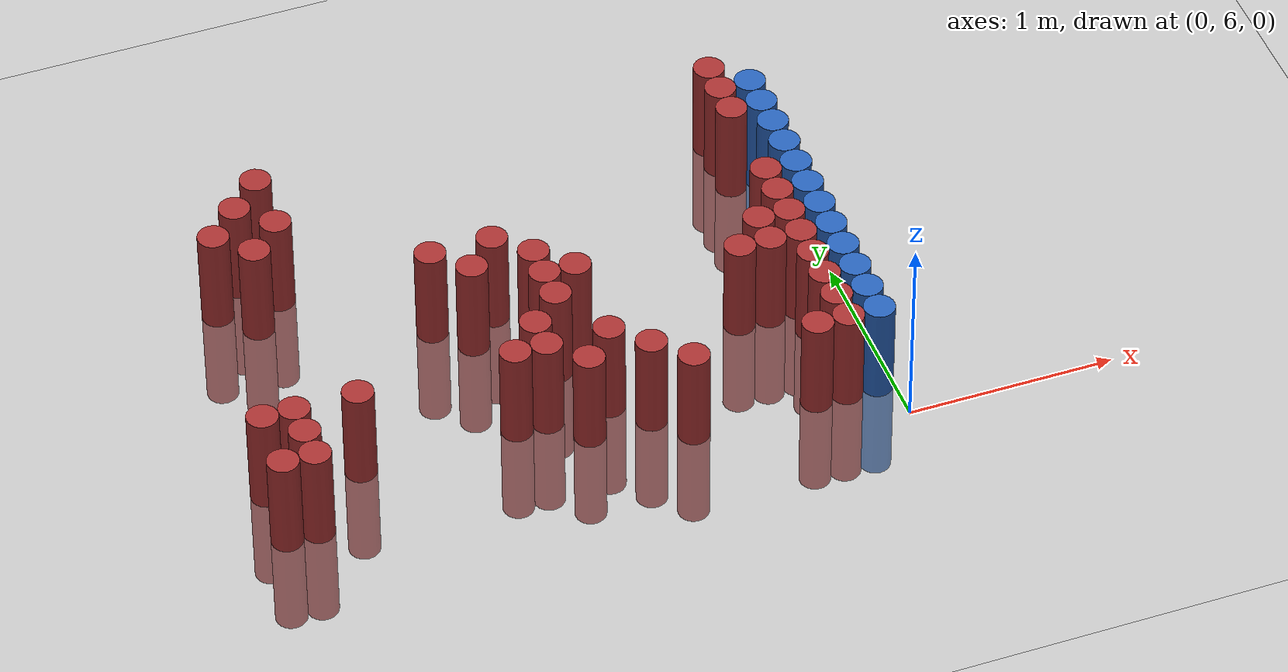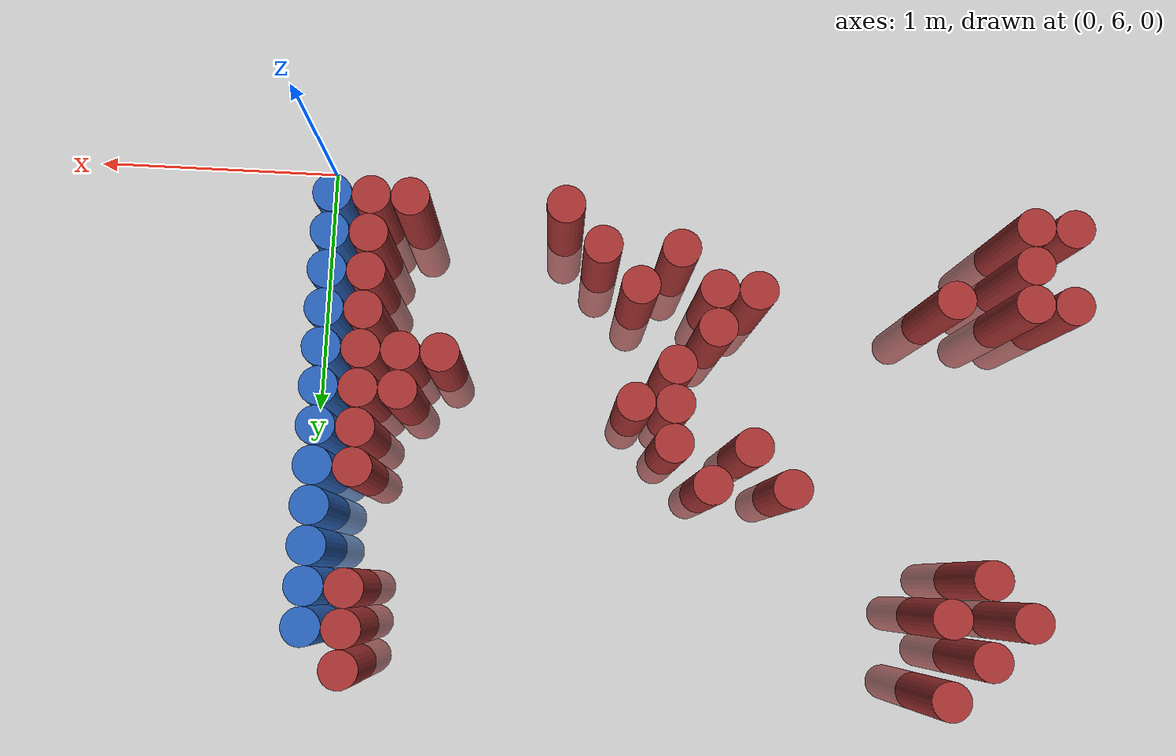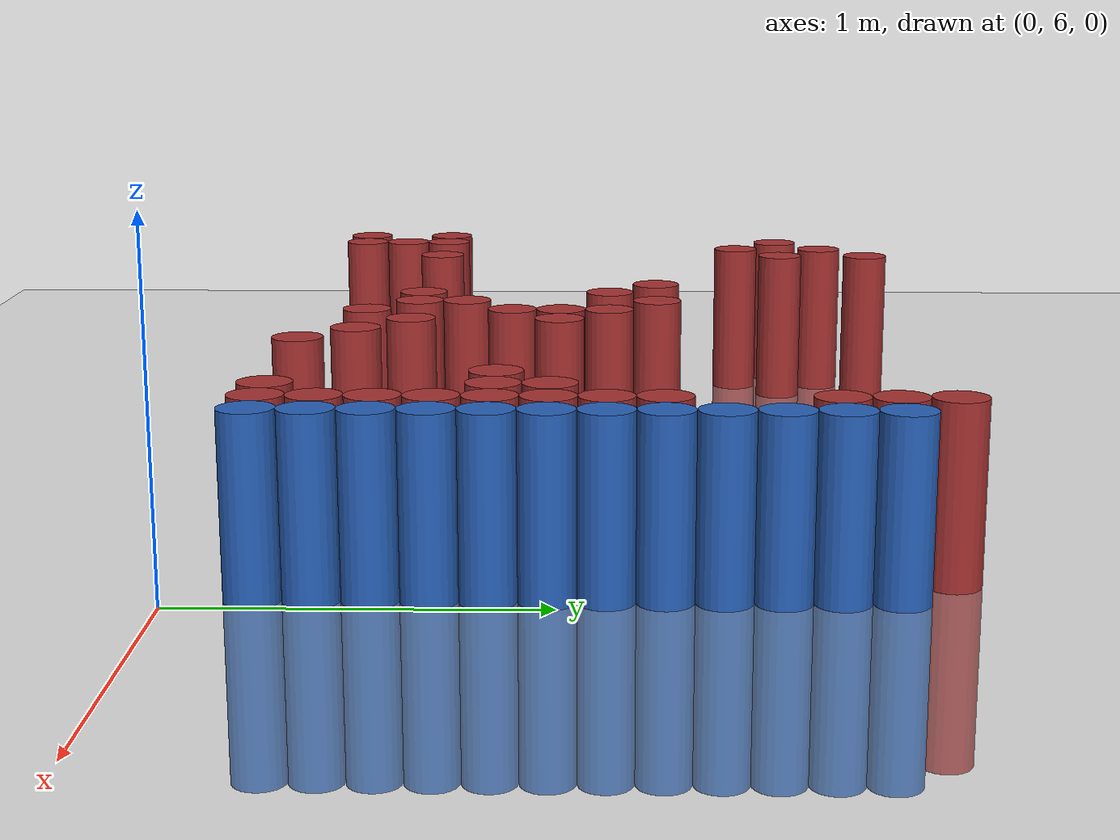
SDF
<sdf version="1.6">
 <world name="default">
  <model name="ground_plane">
   <static>1</static>
   <link name="link">
    <collision name="collision">
     <geometry><plane><normal>0 0 1</normal><size>100 100</size></plane></geometry>
     <surface><friction><ode><mu>100</mu><mu2>50</mu2></ode></friction></surface>
    </collision>
    <visual name="visual">
     <cast_shadows>0</cast_shadows>
     <geometry><plane><normal>0 0 1</normal><size>100 100</size></plane></geometry>
     <material>
      <script><uri>file://media/materials/scripts/gazebo.material</uri><name>Gazebo/Grey</name></script>
     </material>
    </visual>
   </link>
  </model>
  <model name="unit_cylinder_165">
   <static>1</static>
   <pose>-2.925000 6.225000 0.000000 0.000000 0.000000 0.000000</pose>
   <link name="link">
    <inertial>
     <mass>1</mass>
     <inertia><ixx>0.145833</ixx><ixy>0</ixy><ixz>0</ixz><iyy>0.145833</iyy><iyz>0</iyz><izz>0.125</izz></inertia>
    </inertial>
    <collision name="collision">
     <geometry><cylinder><radius>0.075000</radius><length>1</length></cylinder></geometry>
    </collision>
    <visual name="visual">
     <geometry><cylinder><radius>0.075000</radius><length>1</length></cylinder></geometry>
     <material>
      <ambient>0.648000 0.192000 0.192000 1</ambient>
      <diffuse>0.648000 0.192000 0.192000 1</diffuse>
     </material>
     <material>
      <script><name>Gazebo/Grey</name><uri>file://media/materials/scripts/gazebo.material</uri></script>
     </material>
    </visual>
   </link>
  </model>
  <model name="unit_cylinder_166">
   <static>1</static>
   <pose>-2.925000 6.525000 0.000000 0.000000 0.000000 0.000000</pose>
   <link name="link">
    <inertial>
     <mass>1</mass>
     <inertia><ixx>0.145833</ixx><ixy>0</ixy><ixz>0</ixz><iyy>0.145833</iyy><iyz>0</iyz><izz>0.125</izz></inertia>
    </inertial>
    <collision name="collision">
     <geometry><cylinder><radius>0.075000</radius><length>1</length></cylinder></geometry>
    </collision>
    <visual name="visual">
     <geometry><cylinder><radius>0.075000</radius><length>1</length></cylinder></geometry>
     <material>
      <ambient>0.648000 0.192000 0.192000 1</ambient>
      <diffuse>0.648000 0.192000 0.192000 1</diffuse>
     </material>
     <material>
      <script><name>Gazebo/Grey</name><uri>file://media/materials/scripts/gazebo.material</uri></script>
     </material>
    </visual>
   </link>
  </model>
  <model name="unit_cylinder_176">
   <static>1</static>
   <pose>-2.775000 6.225000 0.000000 0.000000 0.000000 0.000000</pose>
   <link name="link">
    <inertial>
     <mass>1</mass>
     <inertia><ixx>0.145833</ixx><ixy>0</ixy><ixz>0</ixz><iyy>0.145833</iyy><iyz>0</iyz><izz>0.125</izz></inertia>
    </inertial>
    <collision name="collision">
     <geometry><cylinder><radius>0.075000</radius><length>1</length></cylinder></geometry>
    </collision>
    <visual name="visual">
     <geometry><cylinder><radius>0.075000</radius><length>1</length></cylinder></geometry>
     <material>
      <ambient>0.648000 0.192000 0.192000 1</ambient>
      <diffuse>0.648000 0.192000 0.192000 1</diffuse>
     </material>
     <material>
      <script><name>Gazebo/Grey</name><uri>file://media/materials/scripts/gazebo.material</uri></script>
     </material>
    </visual>
   </link>
  </model>
  <model name="unit_cylinder_177">
   <static>1</static>
   <pose>-2.775000 6.375000 0.000000 0.000000 0.000000 0.000000</pose>
   <link name="link">
    <inertial>
     <mass>1</mass>
     <inertia><ixx>0.145833</ixx><ixy>0</ixy><ixz>0</ixz><iyy>0.145833</iyy><iyz>0</iyz><izz>0.125</izz></inertia>
    </inertial>
    <collision name="collision">
     <geometry><cylinder><radius>0.075000</radius><length>1</length></cylinder></geometry>
    </collision>
    <visual name="visual">
     <geometry><cylinder><radius>0.075000</radius><length>1</length></cylinder></geometry>
     <material>
      <ambient>0.648000 0.192000 0.192000 1</ambient>
      <diffuse>0.648000 0.192000 0.192000 1</diffuse>
     </material>
     <material>
      <script><name>Gazebo/Grey</name><uri>file://media/materials/scripts/gazebo.material</uri></script>
     </material>
    </visual>
   </link>
  </model>
  <model name="unit_cylinder_178">
   <static>1</static>
   <pose>-2.775000 6.525000 0.000000 0.000000 0.000000 0.000000</pose>
   <link name="link">
    <inertial>
     <mass>1</mass>
     <inertia><ixx>0.145833</ixx><ixy>0</ixy><ixz>0</ixz><iyy>0.145833</iyy><iyz>0</iyz><izz>0.125</izz></inertia>
    </inertial>
    <collision name="collision">
     <geometry><cylinder><radius>0.075000</radius><length>1</length></cylinder></geometry>
    </collision>
    <visual name="visual">
     <geometry><cylinder><radius>0.075000</radius><length>1</length></cylinder></geometry>
     <material>
      <ambient>0.648000 0.192000 0.192000 1</ambient>
      <diffuse>0.648000 0.192000 0.192000 1</diffuse>
     </material>
     <material>
      <script><name>Gazebo/Grey</name><uri>file://media/materials/scripts/gazebo.material</uri></script>
     </material>
    </visual>
   </link>
  </model>
  <model name="unit_cylinder_179">
   <static>1</static>
   <pose>-2.775000 7.725000 0.000000 0.000000 0.000000 0.000000</pose>
   <link name="link">
    <inertial>
     <mass>1</mass>
     <inertia><ixx>0.145833</ixx><ixy>0</ixy><ixz>0</ixz><iyy>0.145833</iyy><iyz>0</iyz><izz>0.125</izz></inertia>
    </inertial>
    <collision name="collision">
     <geometry><cylinder><radius>0.075000</radius><length>1</length></cylinder></geometry>
    </collision>
    <visual name="visual">
     <geometry><cylinder><radius>0.075000</radius><length>1</length></cylinder></geometry>
     <material>
      <ambient>0.648000 0.192000 0.192000 1</ambient>
      <diffuse>0.648000 0.192000 0.192000 1</diffuse>
     </material>
     <material>
      <script><name>Gazebo/Grey</name><uri>file://media/materials/scripts/gazebo.material</uri></script>
     </material>
    </visual>
   </link>
  </model>
  <model name="unit_cylinder_189">
   <static>1</static>
   <pose>-2.625000 7.575000 0.000000 0.000000 0.000000 0.000000</pose>
   <link name="link">
    <inertial>
     <mass>1</mass>
     <inertia><ixx>0.145833</ixx><ixy>0</ixy><ixz>0</ixz><iyy>0.145833</iyy><iyz>0</iyz><izz>0.125</izz></inertia>
    </inertial>
    <collision name="collision">
     <geometry><cylinder><radius>0.075000</radius><length>1</length></cylinder></geometry>
    </collision>
    <visual name="visual">
     <geometry><cylinder><radius>0.075000</radius><length>1</length></cylinder></geometry>
     <material>
      <ambient>0.648000 0.192000 0.192000 1</ambient>
      <diffuse>0.648000 0.192000 0.192000 1</diffuse>
     </material>
     <material>
      <script><name>Gazebo/Grey</name><uri>file://media/materials/scripts/gazebo.material</uri></script>
     </material>
    </visual>
   </link>
  </model>
  <model name="unit_cylinder_190">
   <static>1</static>
   <pose>-2.625000 7.875000 0.000000 0.000000 0.000000 0.000000</pose>
   <link name="link">
    <inertial>
     <mass>1</mass>
     <inertia><ixx>0.145833</ixx><ixy>0</ixy><ixz>0</ixz><iyy>0.145833</iyy><iyz>0</iyz><izz>0.125</izz></inertia>
    </inertial>
    <collision name="collision">
     <geometry><cylinder><radius>0.075000</radius><length>1</length></cylinder></geometry>
    </collision>
    <visual name="visual">
     <geometry><cylinder><radius>0.075000</radius><length>1</length></cylinder></geometry>
     <material>
      <ambient>0.648000 0.192000 0.192000 1</ambient>
      <diffuse>0.648000 0.192000 0.192000 1</diffuse>
     </material>
     <material>
      <script><name>Gazebo/Grey</name><uri>file://media/materials/scripts/gazebo.material</uri></script>
     </material>
    </visual>
   </link>
  </model>
  <model name="unit_cylinder_196">
   <static>1</static>
   <pose>-2.475000 6.525000 0.000000 0.000000 0.000000 0.000000</pose>
   <link name="link">
    <inertial>
     <mass>1</mass>
     <inertia><ixx>0.145833</ixx><ixy>0</ixy><ixz>0</ixz><iyy>0.145833</iyy><iyz>0</iyz><izz>0.125</izz></inertia>
    </inertial>
    <collision name="collision">
     <geometry><cylinder><radius>0.075000</radius><length>1</length></cylinder></geometry>
    </collision>
    <visual name="visual">
     <geometry><cylinder><radius>0.075000</radius><length>1</length></cylinder></geometry>
     <material>
      <ambient>0.648000 0.192000 0.192000 1</ambient>
      <diffuse>0.648000 0.192000 0.192000 1</diffuse>
     </material>
     <material>
      <script><name>Gazebo/Grey</name><uri>file://media/materials/scripts/gazebo.material</uri></script>
     </material>
    </visual>
   </link>
  </model>
  <model name="unit_cylinder_197">
   <static>1</static>
   <pose>-2.475000 7.725000 0.000000 0.000000 0.000000 0.000000</pose>
   <link name="link">
    <inertial>
     <mass>1</mass>
     <inertia><ixx>0.145833</ixx><ixy>0</ixy><ixz>0</ixz><iyy>0.145833</iyy><iyz>0</iyz><izz>0.125</izz></inertia>
    </inertial>
    <collision name="collision">
     <geometry><cylinder><radius>0.075000</radius><length>1</length></cylinder></geometry>
    </collision>
    <visual name="visual">
     <geometry><cylinder><radius>0.075000</radius><length>1</length></cylinder></geometry>
     <material>
      <ambient>0.648000 0.192000 0.192000 1</ambient>
      <diffuse>0.648000 0.192000 0.192000 1</diffuse>
     </material>
     <material>
      <script><name>Gazebo/Grey</name><uri>file://media/materials/scripts/gazebo.material</uri></script>
     </material>
    </visual>
   </link>
  </model>
  <model name="unit_cylinder_198">
   <static>1</static>
   <pose>-2.475000 8.025000 0.000000 0.000000 0.000000 0.000000</pose>
   <link name="link">
    <inertial>
     <mass>1</mass>
     <inertia><ixx>0.145833</ixx><ixy>0</ixy><ixz>0</ixz><iyy>0.145833</iyy><iyz>0</iyz><izz>0.125</izz></inertia>
    </inertial>
    <collision name="collision">
     <geometry><cylinder><radius>0.075000</radius><length>1</length></cylinder></geometry>
    </collision>
    <visual name="visual">
     <geometry><cylinder><radius>0.075000</radius><length>1</length></cylinder></geometry>
     <material>
      <ambient>0.648000 0.192000 0.192000 1</ambient>
      <diffuse>0.648000 0.192000 0.192000 1</diffuse>
     </material>
     <material>
      <script><name>Gazebo/Grey</name><uri>file://media/materials/scripts/gazebo.material</uri></script>
     </material>
    </visual>
   </link>
  </model>
  <model name="unit_cylinder_206">
   <static>1</static>
   <pose>-1.875000 7.275000 0.000000 0.000000 0.000000 0.000000</pose>
   <link name="link">
    <inertial>
     <mass>1</mass>
     <inertia><ixx>0.145833</ixx><ixy>0</ixy><ixz>0</ixz><iyy>0.145833</iyy><iyz>0</iyz><izz>0.125</izz></inertia>
    </inertial>
    <collision name="collision">
     <geometry><cylinder><radius>0.075000</radius><length>1</length></cylinder></geometry>
    </collision>
    <visual name="visual">
     <geometry><cylinder><radius>0.075000</radius><length>1</length></cylinder></geometry>
     <material>
      <ambient>0.648000 0.192000 0.192000 1</ambient>
      <diffuse>0.648000 0.192000 0.192000 1</diffuse>
     </material>
     <material>
      <script><name>Gazebo/Grey</name><uri>file://media/materials/scripts/gazebo.material</uri></script>
     </material>
    </visual>
   </link>
  </model>
  <model name="unit_cylinder_207">
   <static>1</static>
   <pose>-1.725000 6.525000 0.000000 0.000000 0.000000 0.000000</pose>
   <link name="link">
    <inertial>
     <mass>1</mass>
     <inertia><ixx>0.145833</ixx><ixy>0</ixy><ixz>0</ixz><iyy>0.145833</iyy><iyz>0</iyz><izz>0.125</izz></inertia>
    </inertial>
    <collision name="collision">
     <geometry><cylinder><radius>0.075000</radius><length>1</length></cylinder></geometry>
    </collision>
    <visual name="visual">
     <geometry><cylinder><radius>0.075000</radius><length>1</length></cylinder></geometry>
     <material>
      <ambient>0.648000 0.192000 0.192000 1</ambient>
      <diffuse>0.648000 0.192000 0.192000 1</diffuse>
     </material>
     <material>
      <script><name>Gazebo/Grey</name><uri>file://media/materials/scripts/gazebo.material</uri></script>
     </material>
    </visual>
   </link>
  </model>
  <model name="unit_cylinder_208">
   <static>1</static>
   <pose>-1.725000 7.125000 0.000000 0.000000 0.000000 0.000000</pose>
   <link name="link">
    <inertial>
     <mass>1</mass>
     <inertia><ixx>0.145833</ixx><ixy>0</ixy><ixz>0</ixz><iyy>0.145833</iyy><iyz>0</iyz><izz>0.125</izz></inertia>
    </inertial>
    <collision name="collision">
     <geometry><cylinder><radius>0.075000</radius><length>1</length></cylinder></geometry>
    </collision>
    <visual name="visual">
     <geometry><cylinder><radius>0.075000</radius><length>1</length></cylinder></geometry>
     <material>
      <ambient>0.648000 0.192000 0.192000 1</ambient>
      <diffuse>0.648000 0.192000 0.192000 1</diffuse>
     </material>
     <material>
      <script><name>Gazebo/Grey</name><uri>file://media/materials/scripts/gazebo.material</uri></script>
     </material>
    </visual>
   </link>
  </model>
  <model name="unit_cylinder_211">
   <static>1</static>
   <pose>-1.575000 6.525000 0.000000 0.000000 0.000000 0.000000</pose>
   <link name="link">
    <inertial>
     <mass>1</mass>
     <inertia><ixx>0.145833</ixx><ixy>0</ixy><ixz>0</ixz><iyy>0.145833</iyy><iyz>0</iyz><izz>0.125</izz></inertia>
    </inertial>
    <collision name="collision">
     <geometry><cylinder><radius>0.075000</radius><length>1</length></cylinder></geometry>
    </collision>
    <visual name="visual">
     <geometry><cylinder><radius>0.075000</radius><length>1</length></cylinder></geometry>
     <material>
      <ambient>0.648000 0.192000 0.192000 1</ambient>
      <diffuse>0.648000 0.192000 0.192000 1</diffuse>
     </material>
     <material>
      <script><name>Gazebo/Grey</name><uri>file://media/materials/scripts/gazebo.material</uri></script>
     </material>
    </visual>
   </link>
  </model>
  <model name="unit_cylinder_212">
   <static>1</static>
   <pose>-1.575000 6.675000 0.000000 0.000000 0.000000 0.000000</pose>
   <link name="link">
    <inertial>
     <mass>1</mass>
     <inertia><ixx>0.145833</ixx><ixy>0</ixy><ixz>0</ixz><iyy>0.145833</iyy><iyz>0</iyz><izz>0.125</izz></inertia>
    </inertial>
    <collision name="collision">
     <geometry><cylinder><radius>0.075000</radius><length>1</length></cylinder></geometry>
    </collision>
    <visual name="visual">
     <geometry><cylinder><radius>0.075000</radius><length>1</length></cylinder></geometry>
     <material>
      <ambient>0.648000 0.192000 0.192000 1</ambient>
      <diffuse>0.648000 0.192000 0.192000 1</diffuse>
     </material>
     <material>
      <script><name>Gazebo/Grey</name><uri>file://media/materials/scripts/gazebo.material</uri></script>
     </material>
    </visual>
   </link>
  </model>
  <model name="unit_cylinder_213">
   <static>1</static>
   <pose>-1.575000 7.275000 0.000000 0.000000 0.000000 0.000000</pose>
   <link name="link">
    <inertial>
     <mass>1</mass>
     <inertia><ixx>0.145833</ixx><ixy>0</ixy><ixz>0</ixz><iyy>0.145833</iyy><iyz>0</iyz><izz>0.125</izz></inertia>
    </inertial>
    <collision name="collision">
     <geometry><cylinder><radius>0.075000</radius><length>1</length></cylinder></geometry>
    </collision>
    <visual name="visual">
     <geometry><cylinder><radius>0.075000</radius><length>1</length></cylinder></geometry>
     <material>
      <ambient>0.648000 0.192000 0.192000 1</ambient>
      <diffuse>0.648000 0.192000 0.192000 1</diffuse>
     </material>
     <material>
      <script><name>Gazebo/Grey</name><uri>file://media/materials/scripts/gazebo.material</uri></script>
     </material>
    </visual>
   </link>
  </model>
  <model name="unit_cylinder_215">
   <static>1</static>
   <pose>-1.425000 6.375000 0.000000 0.000000 0.000000 0.000000</pose>
   <link name="link">
    <inertial>
     <mass>1</mass>
     <inertia><ixx>0.145833</ixx><ixy>0</ixy><ixz>0</ixz><iyy>0.145833</iyy><iyz>0</iyz><izz>0.125</izz></inertia>
    </inertial>
    <collision name="collision">
     <geometry><cylinder><radius>0.075000</radius><length>1</length></cylinder></geometry>
    </collision>
    <visual name="visual">
     <geometry><cylinder><radius>0.075000</radius><length>1</length></cylinder></geometry>
     <material>
      <ambient>0.648000 0.192000 0.192000 1</ambient>
      <diffuse>0.648000 0.192000 0.192000 1</diffuse>
     </material>
     <material>
      <script><name>Gazebo/Grey</name><uri>file://media/materials/scripts/gazebo.material</uri></script>
     </material>
    </visual>
   </link>
  </model>
  <model name="unit_cylinder_216">
   <static>1</static>
   <pose>-1.425000 6.825000 0.000000 0.000000 0.000000 0.000000</pose>
   <link name="link">
    <inertial>
     <mass>1</mass>
     <inertia><ixx>0.145833</ixx><ixy>0</ixy><ixz>0</ixz><iyy>0.145833</iyy><iyz>0</iyz><izz>0.125</izz></inertia>
    </inertial>
    <collision name="collision">
     <geometry><cylinder><radius>0.075000</radius><length>1</length></cylinder></geometry>
    </collision>
    <visual name="visual">
     <geometry><cylinder><radius>0.075000</radius><length>1</length></cylinder></geometry>
     <material>
      <ambient>0.648000 0.192000 0.192000 1</ambient>
      <diffuse>0.648000 0.192000 0.192000 1</diffuse>
     </material>
     <material>
      <script><name>Gazebo/Grey</name><uri>file://media/materials/scripts/gazebo.material</uri></script>
     </material>
    </visual>
   </link>
  </model>
  <model name="unit_cylinder_217">
   <static>1</static>
   <pose>-1.425000 6.975000 0.000000 0.000000 0.000000 0.000000</pose>
   <link name="link">
    <inertial>
     <mass>1</mass>
     <inertia><ixx>0.145833</ixx><ixy>0</ixy><ixz>0</ixz><iyy>0.145833</iyy><iyz>0</iyz><izz>0.125</izz></inertia>
    </inertial>
    <collision name="collision">
     <geometry><cylinder><radius>0.075000</radius><length>1</length></cylinder></geometry>
    </collision>
    <visual name="visual">
     <geometry><cylinder><radius>0.075000</radius><length>1</length></cylinder></geometry>
     <material>
      <ambient>0.648000 0.192000 0.192000 1</ambient>
      <diffuse>0.648000 0.192000 0.192000 1</diffuse>
     </material>
     <material>
      <script><name>Gazebo/Grey</name><uri>file://media/materials/scripts/gazebo.material</uri></script>
     </material>
    </visual>
   </link>
  </model>
  <model name="unit_cylinder_218">
   <static>1</static>
   <pose>-1.425000 7.125000 0.000000 0.000000 0.000000 0.000000</pose>
   <link name="link">
    <inertial>
     <mass>1</mass>
     <inertia><ixx>0.145833</ixx><ixy>0</ixy><ixz>0</ixz><iyy>0.145833</iyy><iyz>0</iyz><izz>0.125</izz></inertia>
    </inertial>
    <collision name="collision">
     <geometry><cylinder><radius>0.075000</radius><length>1</length></cylinder></geometry>
    </collision>
    <visual name="visual">
     <geometry><cylinder><radius>0.075000</radius><length>1</length></cylinder></geometry>
     <material>
      <ambient>0.648000 0.192000 0.192000 1</ambient>
      <diffuse>0.648000 0.192000 0.192000 1</diffuse>
     </material>
     <material>
      <script><name>Gazebo/Grey</name><uri>file://media/materials/scripts/gazebo.material</uri></script>
     </material>
    </visual>
   </link>
  </model>
  <model name="unit_cylinder_219">
   <static>1</static>
   <pose>-1.275000 6.525000 0.000000 0.000000 0.000000 0.000000</pose>
   <link name="link">
    <inertial>
     <mass>1</mass>
     <inertia><ixx>0.145833</ixx><ixy>0</ixy><ixz>0</ixz><iyy>0.145833</iyy><iyz>0</iyz><izz>0.125</izz></inertia>
    </inertial>
    <collision name="collision">
     <geometry><cylinder><radius>0.075000</radius><length>1</length></cylinder></geometry>
    </collision>
    <visual name="visual">
     <geometry><cylinder><radius>0.075000</radius><length>1</length></cylinder></geometry>
     <material>
      <ambient>0.648000 0.192000 0.192000 1</ambient>
      <diffuse>0.648000 0.192000 0.192000 1</diffuse>
     </material>
     <material>
      <script><name>Gazebo/Grey</name><uri>file://media/materials/scripts/gazebo.material</uri></script>
     </material>
    </visual>
   </link>
  </model>
  <model name="unit_cylinder_220">
   <static>1</static>
   <pose>-1.275000 6.975000 0.000000 0.000000 0.000000 0.000000</pose>
   <link name="link">
    <inertial>
     <mass>1</mass>
     <inertia><ixx>0.145833</ixx><ixy>0</ixy><ixz>0</ixz><iyy>0.145833</iyy><iyz>0</iyz><izz>0.125</izz></inertia>
    </inertial>
    <collision name="collision">
     <geometry><cylinder><radius>0.075000</radius><length>1</length></cylinder></geometry>
    </collision>
    <visual name="visual">
     <geometry><cylinder><radius>0.075000</radius><length>1</length></cylinder></geometry>
     <material>
      <ambient>0.648000 0.192000 0.192000 1</ambient>
      <diffuse>0.648000 0.192000 0.192000 1</diffuse>
     </material>
     <material>
      <script><name>Gazebo/Grey</name><uri>file://media/materials/scripts/gazebo.material</uri></script>
     </material>
    </visual>
   </link>
  </model>
  <model name="unit_cylinder_224">
   <static>1</static>
   <pose>-1.125000 6.375000 0.000000 0.000000 0.000000 0.000000</pose>
   <link name="link">
    <inertial>
     <mass>1</mass>
     <inertia><ixx>0.145833</ixx><ixy>0</ixy><ixz>0</ixz><iyy>0.145833</iyy><iyz>0</iyz><izz>0.125</izz></inertia>
    </inertial>
    <collision name="collision">
     <geometry><cylinder><radius>0.075000</radius><length>1</length></cylinder></geometry>
    </collision>
    <visual name="visual">
     <geometry><cylinder><radius>0.075000</radius><length>1</length></cylinder></geometry>
     <material>
      <ambient>0.648000 0.192000 0.192000 1</ambient>
      <diffuse>0.648000 0.192000 0.192000 1</diffuse>
     </material>
     <material>
      <script><name>Gazebo/Grey</name><uri>file://media/materials/scripts/gazebo.material</uri></script>
     </material>
    </visual>
   </link>
  </model>
  <model name="unit_cylinder_230">
   <static>1</static>
   <pose>-0.975000 6.225000 0.000000 0.000000 0.000000 0.000000</pose>
   <link name="link">
    <inertial>
     <mass>1</mass>
     <inertia><ixx>0.145833</ixx><ixy>0</ixy><ixz>0</ixz><iyy>0.145833</iyy><iyz>0</iyz><izz>0.125</izz></inertia>
    </inertial>
    <collision name="collision">
     <geometry><cylinder><radius>0.075000</radius><length>1</length></cylinder></geometry>
    </collision>
    <visual name="visual">
     <geometry><cylinder><radius>0.075000</radius><length>1</length></cylinder></geometry>
     <material>
      <ambient>0.648000 0.192000 0.192000 1</ambient>
      <diffuse>0.648000 0.192000 0.192000 1</diffuse>
     </material>
     <material>
      <script><name>Gazebo/Grey</name><uri>file://media/materials/scripts/gazebo.material</uri></script>
     </material>
    </visual>
   </link>
  </model>
  <model name="unit_cylinder_243">
   <static>1</static>
   <pose>-0.525000 6.825000 0.000000 0.000000 0.000000 0.000000</pose>
   <link name="link">
    <inertial>
     <mass>1</mass>
     <inertia><ixx>0.145833</ixx><ixy>0</ixy><ixz>0</ixz><iyy>0.145833</iyy><iyz>0</iyz><izz>0.125</izz></inertia>
    </inertial>
    <collision name="collision">
     <geometry><cylinder><radius>0.075000</radius><length>1</length></cylinder></geometry>
    </collision>
    <visual name="visual">
     <geometry><cylinder><radius>0.075000</radius><length>1</length></cylinder></geometry>
     <material>
      <ambient>0.648000 0.192000 0.192000 1</ambient>
      <diffuse>0.648000 0.192000 0.192000 1</diffuse>
     </material>
     <material>
      <script><name>Gazebo/Grey</name><uri>file://media/materials/scripts/gazebo.material</uri></script>
     </material>
    </visual>
   </link>
  </model>
  <model name="unit_cylinder_252">
   <static>1</static>
   <pose>-0.375000 6.225000 0.000000 0.000000 0.000000 0.000000</pose>
   <link name="link">
    <inertial>
     <mass>1</mass>
     <inertia><ixx>0.145833</ixx><ixy>0</ixy><ixz>0</ixz><iyy>0.145833</iyy><iyz>0</iyz><izz>0.125</izz></inertia>
    </inertial>
    <collision name="collision">
     <geometry><cylinder><radius>0.075000</radius><length>1</length></cylinder></geometry>
    </collision>
    <visual name="visual">
     <geometry><cylinder><radius>0.075000</radius><length>1</length></cylinder></geometry>
     <material>
      <ambient>0.648000 0.192000 0.192000 1</ambient>
      <diffuse>0.648000 0.192000 0.192000 1</diffuse>
     </material>
     <material>
      <script><name>Gazebo/Grey</name><uri>file://media/materials/scripts/gazebo.material</uri></script>
     </material>
    </visual>
   </link>
  </model>
  <model name="unit_cylinder_253">
   <static>1</static>
   <pose>-0.375000 6.825000 0.000000 0.000000 0.000000 0.000000</pose>
   <link name="link">
    <inertial>
     <mass>1</mass>
     <inertia><ixx>0.145833</ixx><ixy>0</ixy><ixz>0</ixz><iyy>0.145833</iyy><iyz>0</iyz><izz>0.125</izz></inertia>
    </inertial>
    <collision name="collision">
     <geometry><cylinder><radius>0.075000</radius><length>1</length></cylinder></geometry>
    </collision>
    <visual name="visual">
     <geometry><cylinder><radius>0.075000</radius><length>1</length></cylinder></geometry>
     <material>
      <ambient>0.648000 0.192000 0.192000 1</ambient>
      <diffuse>0.648000 0.192000 0.192000 1</diffuse>
     </material>
     <material>
      <script><name>Gazebo/Grey</name><uri>file://media/materials/scripts/gazebo.material</uri></script>
     </material>
    </visual>
   </link>
  </model>
  <model name="unit_cylinder_254">
   <static>1</static>
   <pose>-0.375000 6.975000 0.000000 0.000000 0.000000 0.000000</pose>
   <link name="link">
    <inertial>
     <mass>1</mass>
     <inertia><ixx>0.145833</ixx><ixy>0</ixy><ixz>0</ixz><iyy>0.145833</iyy><iyz>0</iyz><izz>0.125</izz></inertia>
    </inertial>
    <collision name="collision">
     <geometry><cylinder><radius>0.075000</radius><length>1</length></cylinder></geometry>
    </collision>
    <visual name="visual">
     <geometry><cylinder><radius>0.075000</radius><length>1</length></cylinder></geometry>
     <material>
      <ambient>0.648000 0.192000 0.192000 1</ambient>
      <diffuse>0.648000 0.192000 0.192000 1</diffuse>
     </material>
     <material>
      <script><name>Gazebo/Grey</name><uri>file://media/materials/scripts/gazebo.material</uri></script>
     </material>
    </visual>
   </link>
  </model>
  <model name="unit_cylinder_267">
   <static>1</static>
   <pose>-0.225000 6.225000 0.000000 0.000000 0.000000 0.000000</pose>
   <link name="link">
    <inertial>
     <mass>1</mass>
     <inertia><ixx>0.145833</ixx><ixy>0</ixy><ixz>0</ixz><iyy>0.145833</iyy><iyz>0</iyz><izz>0.125</izz></inertia>
    </inertial>
    <collision name="collision">
     <geometry><cylinder><radius>0.075000</radius><length>1</length></cylinder></geometry>
    </collision>
    <visual name="visual">
     <geometry><cylinder><radius>0.075000</radius><length>1</length></cylinder></geometry>
     <material>
      <ambient>0.648000 0.192000 0.192000 1</ambient>
      <diffuse>0.648000 0.192000 0.192000 1</diffuse>
     </material>
     <material>
      <script><name>Gazebo/Grey</name><uri>file://media/materials/scripts/gazebo.material</uri></script>
     </material>
    </visual>
   </link>
  </model>
  <model name="unit_cylinder_268">
   <static>1</static>
   <pose>-0.225000 6.375000 0.000000 0.000000 0.000000 0.000000</pose>
   <link name="link">
    <inertial>
     <mass>1</mass>
     <inertia><ixx>0.145833</ixx><ixy>0</ixy><ixz>0</ixz><iyy>0.145833</iyy><iyz>0</iyz><izz>0.125</izz></inertia>
    </inertial>
    <collision name="collision">
     <geometry><cylinder><radius>0.075000</radius><length>1</length></cylinder></geometry>
    </collision>
    <visual name="visual">
     <geometry><cylinder><radius>0.075000</radius><length>1</length></cylinder></geometry>
     <material>
      <ambient>0.648000 0.192000 0.192000 1</ambient>
      <diffuse>0.648000 0.192000 0.192000 1</diffuse>
     </material>
     <material>
      <script><name>Gazebo/Grey</name><uri>file://media/materials/scripts/gazebo.material</uri></script>
     </material>
    </visual>
   </link>
  </model>
  <model name="unit_cylinder_269">
   <static>1</static>
   <pose>-0.225000 6.525000 0.000000 0.000000 0.000000 0.000000</pose>
   <link name="link">
    <inertial>
     <mass>1</mass>
     <inertia><ixx>0.145833</ixx><ixy>0</ixy><ixz>0</ixz><iyy>0.145833</iyy><iyz>0</iyz><izz>0.125</izz></inertia>
    </inertial>
    <collision name="collision">
     <geometry><cylinder><radius>0.075000</radius><length>1</length></cylinder></geometry>
    </collision>
    <visual name="visual">
     <geometry><cylinder><radius>0.075000</radius><length>1</length></cylinder></geometry>
     <material>
      <ambient>0.648000 0.192000 0.192000 1</ambient>
      <diffuse>0.648000 0.192000 0.192000 1</diffuse>
     </material>
     <material>
      <script><name>Gazebo/Grey</name><uri>file://media/materials/scripts/gazebo.material</uri></script>
     </material>
    </visual>
   </link>
  </model>
  <model name="unit_cylinder_270">
   <static>1</static>
   <pose>-0.225000 6.675000 0.000000 0.000000 0.000000 0.000000</pose>
   <link name="link">
    <inertial>
     <mass>1</mass>
     <inertia><ixx>0.145833</ixx><ixy>0</ixy><ixz>0</ixz><iyy>0.145833</iyy><iyz>0</iyz><izz>0.125</izz></inertia>
    </inertial>
    <collision name="collision">
     <geometry><cylinder><radius>0.075000</radius><length>1</length></cylinder></geometry>
    </collision>
    <visual name="visual">
     <geometry><cylinder><radius>0.075000</radius><length>1</length></cylinder></geometry>
     <material>
      <ambient>0.648000 0.192000 0.192000 1</ambient>
      <diffuse>0.648000 0.192000 0.192000 1</diffuse>
     </material>
     <material>
      <script><name>Gazebo/Grey</name><uri>file://media/materials/scripts/gazebo.material</uri></script>
     </material>
    </visual>
   </link>
  </model>
  <model name="unit_cylinder_271">
   <static>1</static>
   <pose>-0.225000 6.825000 0.000000 0.000000 0.000000 0.000000</pose>
   <link name="link">
    <inertial>
     <mass>1</mass>
     <inertia><ixx>0.145833</ixx><ixy>0</ixy><ixz>0</ixz><iyy>0.145833</iyy><iyz>0</iyz><izz>0.125</izz></inertia>
    </inertial>
    <collision name="collision">
     <geometry><cylinder><radius>0.075000</radius><length>1</length></cylinder></geometry>
    </collision>
    <visual name="visual">
     <geometry><cylinder><radius>0.075000</radius><length>1</length></cylinder></geometry>
     <material>
      <ambient>0.648000 0.192000 0.192000 1</ambient>
      <diffuse>0.648000 0.192000 0.192000 1</diffuse>
     </material>
     <material>
      <script><name>Gazebo/Grey</name><uri>file://media/materials/scripts/gazebo.material</uri></script>
     </material>
    </visual>
   </link>
  </model>
  <model name="unit_cylinder_272">
   <static>1</static>
   <pose>-0.225000 6.975000 0.000000 0.000000 0.000000 0.000000</pose>
   <link name="link">
    <inertial>
     <mass>1</mass>
     <inertia><ixx>0.145833</ixx><ixy>0</ixy><ixz>0</ixz><iyy>0.145833</iyy><iyz>0</iyz><izz>0.125</izz></inertia>
    </inertial>
    <collision name="collision">
     <geometry><cylinder><radius>0.075000</radius><length>1</length></cylinder></geometry>
    </collision>
    <visual name="visual">
     <geometry><cylinder><radius>0.075000</radius><length>1</length></cylinder></geometry>
     <material>
      <ambient>0.648000 0.192000 0.192000 1</ambient>
      <diffuse>0.648000 0.192000 0.192000 1</diffuse>
     </material>
     <material>
      <script><name>Gazebo/Grey</name><uri>file://media/materials/scripts/gazebo.material</uri></script>
     </material>
    </visual>
   </link>
  </model>
  <model name="unit_cylinder_273">
   <static>1</static>
   <pose>-0.225000 7.125000 0.000000 0.000000 0.000000 0.000000</pose>
   <link name="link">
    <inertial>
     <mass>1</mass>
     <inertia><ixx>0.145833</ixx><ixy>0</ixy><ixz>0</ixz><iyy>0.145833</iyy><iyz>0</iyz><izz>0.125</izz></inertia>
    </inertial>
    <collision name="collision">
     <geometry><cylinder><radius>0.075000</radius><length>1</length></cylinder></geometry>
    </collision>
    <visual name="visual">
     <geometry><cylinder><radius>0.075000</radius><length>1</length></cylinder></geometry>
     <material>
      <ambient>0.648000 0.192000 0.192000 1</ambient>
      <diffuse>0.648000 0.192000 0.192000 1</diffuse>
     </material>
     <material>
      <script><name>Gazebo/Grey</name><uri>file://media/materials/scripts/gazebo.material</uri></script>
     </material>
    </visual>
   </link>
  </model>
  <model name="unit_cylinder_274">
   <static>1</static>
   <pose>-0.225000 7.275000 0.000000 0.000000 0.000000 0.000000</pose>
   <link name="link">
    <inertial>
     <mass>1</mass>
     <inertia><ixx>0.145833</ixx><ixy>0</ixy><ixz>0</ixz><iyy>0.145833</iyy><iyz>0</iyz><izz>0.125</izz></inertia>
    </inertial>
    <collision name="collision">
     <geometry><cylinder><radius>0.075000</radius><length>1</length></cylinder></geometry>
    </collision>
    <visual name="visual">
     <geometry><cylinder><radius>0.075000</radius><length>1</length></cylinder></geometry>
     <material>
      <ambient>0.648000 0.192000 0.192000 1</ambient>
      <diffuse>0.648000 0.192000 0.192000 1</diffuse>
     </material>
     <material>
      <script><name>Gazebo/Grey</name><uri>file://media/materials/scripts/gazebo.material</uri></script>
     </material>
    </visual>
   </link>
  </model>
  <model name="unit_cylinder_275">
   <static>1</static>
   <pose>-0.225000 7.725000 0.000000 0.000000 0.000000 0.000000</pose>
   <link name="link">
    <inertial>
     <mass>1</mass>
     <inertia><ixx>0.145833</ixx><ixy>0</ixy><ixz>0</ixz><iyy>0.145833</iyy><iyz>0</iyz><izz>0.125</izz></inertia>
    </inertial>
    <collision name="collision">
     <geometry><cylinder><radius>0.075000</radius><length>1</length></cylinder></geometry>
    </collision>
    <visual name="visual">
     <geometry><cylinder><radius>0.075000</radius><length>1</length></cylinder></geometry>
     <material>
      <ambient>0.648000 0.192000 0.192000 1</ambient>
      <diffuse>0.648000 0.192000 0.192000 1</diffuse>
     </material>
     <material>
      <script><name>Gazebo/Grey</name><uri>file://media/materials/scripts/gazebo.material</uri></script>
     </material>
    </visual>
   </link>
  </model>
  <model name="unit_cylinder_276">
   <static>1</static>
   <pose>-0.225000 7.875000 0.000000 0.000000 0.000000 0.000000</pose>
   <link name="link">
    <inertial>
     <mass>1</mass>
     <inertia><ixx>0.145833</ixx><ixy>0</ixy><ixz>0</ixz><iyy>0.145833</iyy><iyz>0</iyz><izz>0.125</izz></inertia>
    </inertial>
    <collision name="collision">
     <geometry><cylinder><radius>0.075000</radius><length>1</length></cylinder></geometry>
    </collision>
    <visual name="visual">
     <geometry><cylinder><radius>0.075000</radius><length>1</length></cylinder></geometry>
     <material>
      <ambient>0.648000 0.192000 0.192000 1</ambient>
      <diffuse>0.648000 0.192000 0.192000 1</diffuse>
     </material>
     <material>
      <script><name>Gazebo/Grey</name><uri>file://media/materials/scripts/gazebo.material</uri></script>
     </material>
    </visual>
   </link>
  </model>
  <model name="unit_cylinder_277">
   <static>1</static>
   <pose>-0.225000 8.025000 0.000000 0.000000 0.000000 0.000000</pose>
   <link name="link">
    <inertial>
     <mass>1</mass>
     <inertia><ixx>0.145833</ixx><ixy>0</ixy><ixz>0</ixz><iyy>0.145833</iyy><iyz>0</iyz><izz>0.125</izz></inertia>
    </inertial>
    <collision name="collision">
     <geometry><cylinder><radius>0.075000</radius><length>1</length></cylinder></geometry>
    </collision>
    <visual name="visual">
     <geometry><cylinder><radius>0.075000</radius><length>1</length></cylinder></geometry>
     <material>
      <ambient>0.648000 0.192000 0.192000 1</ambient>
      <diffuse>0.648000 0.192000 0.192000 1</diffuse>
     </material>
     <material>
      <script><name>Gazebo/Grey</name><uri>file://media/materials/scripts/gazebo.material</uri></script>
     </material>
    </visual>
   </link>
  </model>
  <model name="unit_cylinder_290">
   <static>1</static>
   <pose>-0.075000 6.225000 0.000000 0.000000 0.000000 0.000000</pose>
   <link name="link">
    <inertial>
     <mass>1</mass>
     <inertia><ixx>0.145833</ixx><ixy>0</ixy><ixz>0</ixz><iyy>0.145833</iyy><iyz>0</iyz><izz>0.125</izz></inertia>
    </inertial>
    <collision name="collision">
     <geometry><cylinder><radius>0.075000</radius><length>1</length></cylinder></geometry>
    </collision>
    <visual name="visual">
     <geometry><cylinder><radius>0.075000</radius><length>1</length></cylinder></geometry>
     <material>
      <ambient>0.152000 0.379000 0.720000 1</ambient>
      <diffuse>0.152000 0.379000 0.720000 1</diffuse>
     </material>
     <material>
      <script><name>Gazebo/Grey</name><uri>file://media/materials/scripts/gazebo.material</uri></script>
     </material>
    </visual>
   </link>
  </model>
  <model name="unit_cylinder_291">
   <static>1</static>
   <pose>-0.075000 6.375000 0.000000 0.000000 0.000000 0.000000</pose>
   <link name="link">
    <inertial>
     <mass>1</mass>
     <inertia><ixx>0.145833</ixx><ixy>0</ixy><ixz>0</ixz><iyy>0.145833</iyy><iyz>0</iyz><izz>0.125</izz></inertia>
    </inertial>
    <collision name="collision">
     <geometry><cylinder><radius>0.075000</radius><length>1</length></cylinder></geometry>
    </collision>
    <visual name="visual">
     <geometry><cylinder><radius>0.075000</radius><length>1</length></cylinder></geometry>
     <material>
      <ambient>0.152000 0.379000 0.720000 1</ambient>
      <diffuse>0.152000 0.379000 0.720000 1</diffuse>
     </material>
     <material>
      <script><name>Gazebo/Grey</name><uri>file://media/materials/scripts/gazebo.material</uri></script>
     </material>
    </visual>
   </link>
  </model>
  <model name="unit_cylinder_292">
   <static>1</static>
   <pose>-0.075000 6.525000 0.000000 0.000000 0.000000 0.000000</pose>
   <link name="link">
    <inertial>
     <mass>1</mass>
     <inertia><ixx>0.145833</ixx><ixy>0</ixy><ixz>0</ixz><iyy>0.145833</iyy><iyz>0</iyz><izz>0.125</izz></inertia>
    </inertial>
    <collision name="collision">
     <geometry><cylinder><radius>0.075000</radius><length>1</length></cylinder></geometry>
    </collision>
    <visual name="visual">
     <geometry><cylinder><radius>0.075000</radius><length>1</length></cylinder></geometry>
     <material>
      <ambient>0.152000 0.379000 0.720000 1</ambient>
      <diffuse>0.152000 0.379000 0.720000 1</diffuse>
     </material>
     <material>
      <script><name>Gazebo/Grey</name><uri>file://media/materials/scripts/gazebo.material</uri></script>
     </material>
    </visual>
   </link>
  </model>
  <model name="unit_cylinder_293">
   <static>1</static>
   <pose>-0.075000 6.675000 0.000000 0.000000 0.000000 0.000000</pose>
   <link name="link">
    <inertial>
     <mass>1</mass>
     <inertia><ixx>0.145833</ixx><ixy>0</ixy><ixz>0</ixz><iyy>0.145833</iyy><iyz>0</iyz><izz>0.125</izz></inertia>
    </inertial>
    <collision name="collision">
     <geometry><cylinder><radius>0.075000</radius><length>1</length></cylinder></geometry>
    </collision>
    <visual name="visual">
     <geometry><cylinder><radius>0.075000</radius><length>1</length></cylinder></geometry>
     <material>
      <ambient>0.152000 0.379000 0.720000 1</ambient>
      <diffuse>0.152000 0.379000 0.720000 1</diffuse>
     </material>
     <material>
      <script><name>Gazebo/Grey</name><uri>file://media/materials/scripts/gazebo.material</uri></script>
     </material>
    </visual>
   </link>
  </model>
  <model name="unit_cylinder_294">
   <static>1</static>
   <pose>-0.075000 6.825000 0.000000 0.000000 0.000000 0.000000</pose>
   <link name="link">
    <inertial>
     <mass>1</mass>
     <inertia><ixx>0.145833</ixx><ixy>0</ixy><ixz>0</ixz><iyy>0.145833</iyy><iyz>0</iyz><izz>0.125</izz></inertia>
    </inertial>
    <collision name="collision">
     <geometry><cylinder><radius>0.075000</radius><length>1</length></cylinder></geometry>
    </collision>
    <visual name="visual">
     <geometry><cylinder><radius>0.075000</radius><length>1</length></cylinder></geometry>
     <material>
      <ambient>0.152000 0.379000 0.720000 1</ambient>
      <diffuse>0.152000 0.379000 0.720000 1</diffuse>
     </material>
     <material>
      <script><name>Gazebo/Grey</name><uri>file://media/materials/scripts/gazebo.material</uri></script>
     </material>
    </visual>
   </link>
  </model>
  <model name="unit_cylinder_295">
   <static>1</static>
   <pose>-0.075000 6.975000 0.000000 0.000000 0.000000 0.000000</pose>
   <link name="link">
    <inertial>
     <mass>1</mass>
     <inertia><ixx>0.145833</ixx><ixy>0</ixy><ixz>0</ixz><iyy>0.145833</iyy><iyz>0</iyz><izz>0.125</izz></inertia>
    </inertial>
    <collision name="collision">
     <geometry><cylinder><radius>0.075000</radius><length>1</length></cylinder></geometry>
    </collision>
    <visual name="visual">
     <geometry><cylinder><radius>0.075000</radius><length>1</length></cylinder></geometry>
     <material>
      <ambient>0.152000 0.379000 0.720000 1</ambient>
      <diffuse>0.152000 0.379000 0.720000 1</diffuse>
     </material>
     <material>
      <script><name>Gazebo/Grey</name><uri>file://media/materials/scripts/gazebo.material</uri></script>
     </material>
    </visual>
   </link>
  </model>
  <model name="unit_cylinder_296">
   <static>1</static>
   <pose>-0.075000 7.125000 0.000000 0.000000 0.000000 0.000000</pose>
   <link name="link">
    <inertial>
     <mass>1</mass>
     <inertia><ixx>0.145833</ixx><ixy>0</ixy><ixz>0</ixz><iyy>0.145833</iyy><iyz>0</iyz><izz>0.125</izz></inertia>
    </inertial>
    <collision name="collision">
     <geometry><cylinder><radius>0.075000</radius><length>1</length></cylinder></geometry>
    </collision>
    <visual name="visual">
     <geometry><cylinder><radius>0.075000</radius><length>1</length></cylinder></geometry>
     <material>
      <ambient>0.152000 0.379000 0.720000 1</ambient>
      <diffuse>0.152000 0.379000 0.720000 1</diffuse>
     </material>
     <material>
      <script><name>Gazebo/Grey</name><uri>file://media/materials/scripts/gazebo.material</uri></script>
     </material>
    </visual>
   </link>
  </model>
  <model name="unit_cylinder_297">
   <static>1</static>
   <pose>-0.075000 7.275000 0.000000 0.000000 0.000000 0.000000</pose>
   <link name="link">
    <inertial>
     <mass>1</mass>
     <inertia><ixx>0.145833</ixx><ixy>0</ixy><ixz>0</ixz><iyy>0.145833</iyy><iyz>0</iyz><izz>0.125</izz></inertia>
    </inertial>
    <collision name="collision">
     <geometry><cylinder><radius>0.075000</radius><length>1</length></cylinder></geometry>
    </collision>
    <visual name="visual">
     <geometry><cylinder><radius>0.075000</radius><length>1</length></cylinder></geometry>
     <material>
      <ambient>0.152000 0.379000 0.720000 1</ambient>
      <diffuse>0.152000 0.379000 0.720000 1</diffuse>
     </material>
     <material>
      <script><name>Gazebo/Grey</name><uri>file://media/materials/scripts/gazebo.material</uri></script>
     </material>
    </visual>
   </link>
  </model>
  <model name="unit_cylinder_298">
   <static>1</static>
   <pose>-0.075000 7.425000 0.000000 0.000000 0.000000 0.000000</pose>
   <link name="link">
    <inertial>
     <mass>1</mass>
     <inertia><ixx>0.145833</ixx><ixy>0</ixy><ixz>0</ixz><iyy>0.145833</iyy><iyz>0</iyz><izz>0.125</izz></inertia>
    </inertial>
    <collision name="collision">
     <geometry><cylinder><radius>0.075000</radius><length>1</length></cylinder></geometry>
    </collision>
    <visual name="visual">
     <geometry><cylinder><radius>0.075000</radius><length>1</length></cylinder></geometry>
     <material>
      <ambient>0.152000 0.379000 0.720000 1</ambient>
      <diffuse>0.152000 0.379000 0.720000 1</diffuse>
     </material>
     <material>
      <script><name>Gazebo/Grey</name><uri>file://media/materials/scripts/gazebo.material</uri></script>
     </material>
    </visual>
   </link>
  </model>
  <model name="unit_cylinder_299">
   <static>1</static>
   <pose>-0.075000 7.575000 0.000000 0.000000 0.000000 0.000000</pose>
   <link name="link">
    <inertial>
     <mass>1</mass>
     <inertia><ixx>0.145833</ixx><ixy>0</ixy><ixz>0</ixz><iyy>0.145833</iyy><iyz>0</iyz><izz>0.125</izz></inertia>
    </inertial>
    <collision name="collision">
     <geometry><cylinder><radius>0.075000</radius><length>1</length></cylinder></geometry>
    </collision>
    <visual name="visual">
     <geometry><cylinder><radius>0.075000</radius><length>1</length></cylinder></geometry>
     <material>
      <ambient>0.152000 0.379000 0.720000 1</ambient>
      <diffuse>0.152000 0.379000 0.720000 1</diffuse>
     </material>
     <material>
      <script><name>Gazebo/Grey</name><uri>file://media/materials/scripts/gazebo.material</uri></script>
     </material>
    </visual>
   </link>
  </model>
  <model name="unit_cylinder_300">
   <static>1</static>
   <pose>-0.075000 7.725000 0.000000 0.000000 0.000000 0.000000</pose>
   <link name="link">
    <inertial>
     <mass>1</mass>
     <inertia><ixx>0.145833</ixx><ixy>0</ixy><ixz>0</ixz><iyy>0.145833</iyy><iyz>0</iyz><izz>0.125</izz></inertia>
    </inertial>
    <collision name="collision">
     <geometry><cylinder><radius>0.075000</radius><length>1</length></cylinder></geometry>
    </collision>
    <visual name="visual">
     <geometry><cylinder><radius>0.075000</radius><length>1</length></cylinder></geometry>
     <material>
      <ambient>0.152000 0.379000 0.720000 1</ambient>
      <diffuse>0.152000 0.379000 0.720000 1</diffuse>
     </material>
     <material>
      <script><name>Gazebo/Grey</name><uri>file://media/materials/scripts/gazebo.material</uri></script>
     </material>
    </visual>
   </link>
  </model>
  <model name="unit_cylinder_301">
   <static>1</static>
   <pose>-0.075000 7.875000 0.000000 0.000000 0.000000 0.000000</pose>
   <link name="link">
    <inertial>
     <mass>1</mass>
     <inertia><ixx>0.145833</ixx><ixy>0</ixy><ixz>0</ixz><iyy>0.145833</iyy><iyz>0</iyz><izz>0.125</izz></inertia>
    </inertial>
    <collision name="collision">
     <geometry><cylinder><radius>0.075000</radius><length>1</length></cylinder></geometry>
    </collision>
    <visual name="visual">
     <geometry><cylinder><radius>0.075000</radius><length>1</length></cylinder></geometry>
     <material>
      <ambient>0.152000 0.379000 0.720000 1</ambient>
      <diffuse>0.152000 0.379000 0.720000 1</diffuse>
     </material>
     <material>
      <script><name>Gazebo/Grey</name><uri>file://media/materials/scripts/gazebo.material</uri></script>
     </material>
    </visual>
   </link>
  </model>
 </world>
</sdf>
